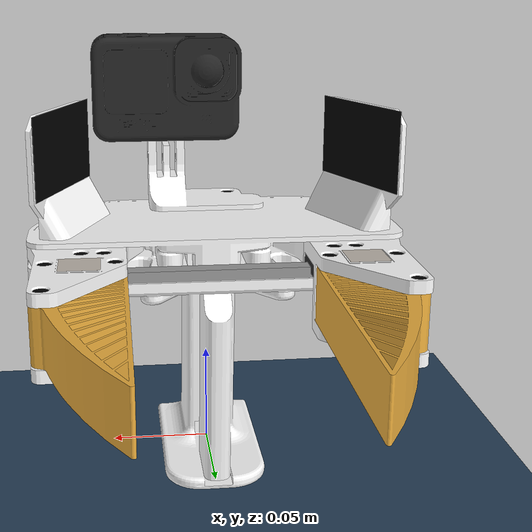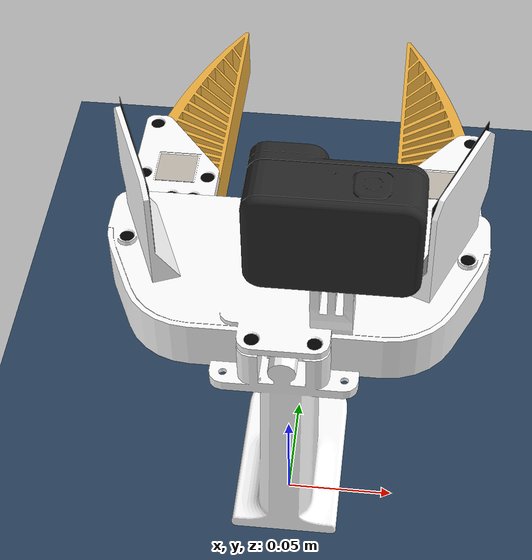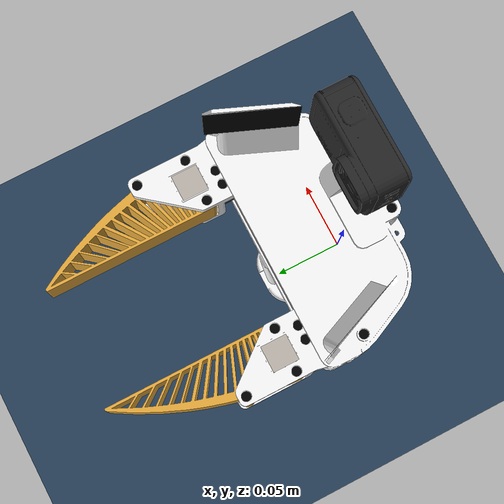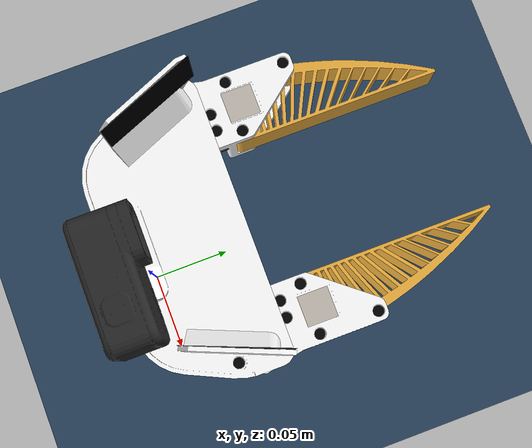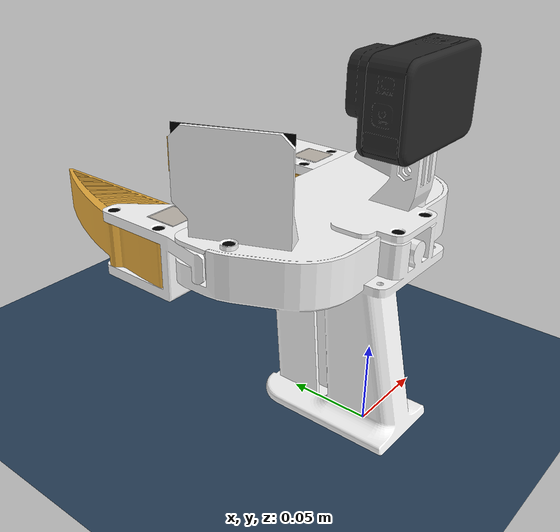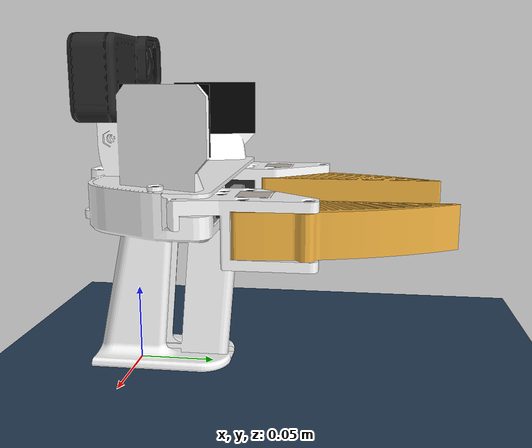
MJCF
<mujoco model="scene">

  <include file="umi_gripper.xml"/>

  <statistic extent="1.0"/>

  <visual>
    <headlight diffuse="0.3 0.3 0.3" ambient="0.2 0.2 0.2" specular="0 0 0"/>
    <rgba haze="0.15 0.25 0.35 1"/>
    <global azimuth="-120" elevation="-20"/>
    <quality shadowsize="0"/>
  </visual>

  <asset>
    <texture type="skybox" builtin="gradient" rgb1="0.3 0.5 0.7" rgb2="0 0 0" width="512" height="3072"/>
    <texture type="2d" name="groundplane" builtin="checker" mark="edge" rgb1="0.2 0.3 0.4" rgb2="0.1 0.2 0.3"
      markrgb="0.8 0.8 0.8" width="300" height="300"/>
    <material name="groundplane" texture="groundplane" texuniform="true" texrepeat="5 5" reflectance="0.0"/>
  </asset>

  <worldbody>
    <light pos="0 0 4.5" dir="0 0 -1" directional="true"/>
    <light pos="0 -4.5 0.6" dir="0 1 0" directional="true"/>

    <geom name="floor" size="1 1 0.05" type="plane" material="groundplane"/>
  </worldbody>
</mujoco>

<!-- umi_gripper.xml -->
<mujoco model="umi_gripper">
  <compiler angle="radian" meshdir="assets" texturedir="assets"/>

  <option integrator="implicitfast" impratio="10" cone="elliptic" noslip_iterations="2">
    <flag multiccd="enable"/>
  </option>

  <asset>
    <mesh file="base_link.stl"/>
    <mesh file="left_finger_holder.stl"/>
    <mesh file="left_finger.stl"/>
    <mesh file="right_finger_holder.stl"/>
    <mesh file="right_finger.stl"/>
    <mesh file="gopro.stl"/>

    <texture name="right_aruco_sticker" type="2d" file="right_aruco_sticker.png"/>
    <texture name="left_aruco_sticker" type="2d" file="left_aruco_sticker.png"/>
    <material name="Right_Aruco_Base_Sticker" texture="right_aruco_sticker"/>
    <material name="Left_Aruco_Base_Sticker" texture="left_aruco_sticker"/>

    <material name="mirror" rgba="0 0 0 1" texrepeat="5 5" reflectance="1.0"/>
    <material name="white" rgba="1 1 1 1"/>
    <material name="gray" rgba="0.15 0.15 0.15 1"/>
    <material name="light_gray" rgba="0.6 0.6 0.6 1"/>
    <material name="orange" rgba="0.92 0.68 0.24 1"/>
    <material name="black" rgba="0 0 0 1"/>
  </asset>

  <default>
    <default class="umi_gripper">
      <joint frictionloss="0.1" armature="0.1"/>
      <position kp="1000"/>

      <default class="screw">
        <geom type="cylinder" size="0.0035 0.0035 0.01" material="black" contype="0" conaffinity="0"/>
      </default>

      <default class="gripper_slide">
        <joint type="slide" damping="0.1" range="-1.2 1.2"/>
        <position kp="100" dampratio="1" ctrlrange="-1.2 1.2"/>
      </default>
      <default class="gripper_hinge">
        <joint type="hinge" damping="10.1" range="-31.415 31.415"/>
        <position kp="10" dampratio="0.1" ctrlrange="-3.1415 3.1415"/>
      </default>
      <default class="finger_slide">
        <joint type="slide" stiffness="100" damping="10.1" range="0 0.05"/>
      </default>

      <default class="finger_actuator">
        <position ctrlrange="0 0.05"/>
      </default>
      <default class="gripper_actuator">
        <position kp="100" dampratio="1" ctrlrange="-1.2 1.2"/>
      </default>
      <default class="gripper_rot_actuator">
        <position kp="10" dampratio="0.1" ctrlrange="-3.1415 3.1415"/>
      </default>

      <default class="visual">
        <geom type="mesh" contype="0" conaffinity="0" density="0" group="2"/>
      </default>
      <default class="collision">
        <geom type="mesh" group="3"/>
      </default>

      <default class="marker">
        <geom type="box" size="0.009 0.009 0.00001" material="white" contype="0" conaffinity="0" mass="0.0"/>
      </default>
      <default class="finger_holder_geom">
        <geom type="mesh" contype="0" conaffinity="0" group="1" density="0" material="white"/>
      </default>
    </default>
  </default>

  <worldbody>
    <body quat="-1 1 0 0" pos="0 0 0.11">

      <!-- Gripper Camera -->
      <camera name="gripper_gopro" pos="0 -0.092 0.04" quat="0 1 0 0" mode="fixed" fovy="155"/>

      <!-- Positional Joints -->
      <joint name="gripper_joint_x" axis="1 0 0" class="gripper_slide"/>
      <joint name="gripper_joint_y" axis="0 0 1" class="gripper_slide"/>
      <joint name="gripper_joint_z" axis="0 -1 0" class="gripper_slide"/>

      <!-- Rotational Joints -->
      <joint name="gripper_joint_rx" axis="1 0 0" class="gripper_hinge"/>
      <joint name="gripper_joint_ry" axis="0 0 1" class="gripper_hinge"/>
      <joint name="gripper_joint_rz" axis="0 -1 0" class="gripper_hinge"/>

      <!-- Linear Rail -->
      <geom name="linear_guide_rail" type="box" pos="0 -0.002 0.062" size="0.08 0.003 0.004" material="light_gray"
        class="visual"/>

      <!-- Mirrors -->
      <geom name="left_mirror" type="box" pos="-0.069 -0.057 0.04" size="0.03 0.0187 0.0001" quat="0.828 0 0.5605 0"
        material="mirror" class="visual"/>
      <geom name="right_mirror" type="box" pos="0.069 -0.057 0.04" size="0.03 0.0187 0.0001" quat="0.828 0 -0.5605 0"
        material="mirror" class="visual"/>

      <!-- Base Link -->
      <geom mesh="base_link" class="visual" material="white"/>
      <geom mesh="base_link" class="collision"/>
      <geom name="left_center_base_screw" pos="-0.076 -0.018 0.036" quat="-1 1 0 0" class="screw"/>
      <geom name="right_center_base_screw" pos="0.076 -0.018 0.036" quat="-1 1 0 0" class="screw"/>
      <geom name="left_back_base_screw" pos="-0.0137 -0.018 -0.018" quat="-1 1 0 0" class="screw"/>
      <geom name="right_back_base_screw" pos="0.0137 -0.018 -0.018" quat="-1 1 0 0" class="screw"/>

      <!-- GoPro Camera -->
      <geom pos="0.01965 -0.07875 -0.0187" quat="0 0 -1 1" mesh="gopro" class="visual" material="gray"/>
      <geom pos="0.01965 -0.07875 -0.0187" quat="0 0 -1 1" mesh="gopro" class="collision"/>

      <!-- Left Finger -->
      <body name="left_finger_holder" quat="1 1 0 0">
        <geom name="left_screw_back_outside" pos="-0.0515 0.07 0.012" class="screw"/>
        <geom name="left_screw_back_inside" pos="-0.0615 0.07 0.012" class="screw"/>
        <geom name="left_screw_middle_outside" pos="-0.0768 0.0835 0.012" class="screw"/>
        <geom name="left_screw_middle_inside" pos="-0.047 0.0835 0.012" class="screw"/>
        <geom name="left_screw_front" pos="-0.0764 0.119 0.012" class="screw"/>
        <geom name="left_rail_block" type="box" pos="-0.051 0.063 0.006" size="0.009 0.012 0.004" material="gray"
          class="visual"/>
        <geom name="left_marker" pos="-0.062 0.088 0.0164" material="Left_Aruco_Base_Sticker" class="marker"/>
        <inertial pos="-0.0613355 0.104073 -0.0013157" quat="0.49913 0.411547 -0.543302 0.53509" mass="0.080081"
          diaginertia="0.000104597 0.000102992 1.90532e-05"/>
        <joint name="left_finger_joint" axis="1 0 0" class="finger_slide"/>
        <geom mesh="left_finger_holder" class="visual" material="white"/>
        <geom mesh="left_finger_holder" class="collision"/>
        <geom pos="-0.041722 0.0779 -0.0159" quat="0 0 -1 1" mesh="left_finger" class="visual" material="orange"/>
        <geom pos="-0.041722 0.0779 -0.0159" quat="0 0 -1 1" mesh="left_finger" class="collision"/>
      </body>

      <!-- Right Finger -->
      <body name="right_finger_holder" quat="1 1 0 0">
        <geom name="right_screw_back_outside" pos="0.0515 0.07 0.012" class="screw"/>
        <geom name="right_screw_back_inside" pos="0.0615 0.07 0.012" class="screw"/>
        <geom name="right_screw_middle_outside" pos="0.0764 0.0835 0.012" class="screw"/>
        <geom name="right_screw_middle_inside" pos="0.047 0.0835 0.012" class="screw"/>
        <geom name="right_screw_front" pos="0.0764 0.119 0.012" class="screw"/>
        <geom name="right_rail_block" type="box" pos="0.051 0.063 0.006" size="0.009 0.012 0.004" material="gray"
          class="visual"/>
        <geom name="right_marker" pos="0.062 0.088 0.0164" material="Right_Aruco_Base_Sticker" class="marker"/>
        <inertial pos="0.0613353 0.104073 -0.00131574" quat="0.535092 0.543308 -0.41154 0.499127" mass="0.080081"
          diaginertia="0.000104597 0.000102992 1.90532e-05"/>
        <joint name="right_finger_joint" axis="-1 0 0" class="finger_slide"/>
        <geom mesh="right_finger_holder" class="visual" material="white"/>
        <geom mesh="right_finger_holder" class="collision"/>
        <geom pos="0.041722 0.0779 0.0099" quat="1 1 0 0" mesh="right_finger" class="visual" material="orange"/>
        <geom pos="0.041722 0.0779 0.0099" quat="1 1 0 0" mesh="right_finger" class="collision"/>
      </body>
    </body>
  </worldbody>

  <tendon>
    <fixed name="split">
      <joint joint="right_finger_joint" coef="0.5"/>
      <joint joint="left_finger_joint" coef="0.5"/>
    </fixed>
  </tendon>

  <actuator>
    <position name="fingers_actuator" tendon="split" class="finger_actuator"/>
    <position name="gripper_joint_x_act" joint="gripper_joint_x" class="gripper_actuator"/>
    <position name="gripper_joint_y_act" joint="gripper_joint_y" class="gripper_actuator"/>
    <position name="gripper_joint_z_act" joint="gripper_joint_z" class="gripper_actuator"/>
    <position name="gripper_joint_rx_act" joint="gripper_joint_rx" class="gripper_rot_actuator"/>
    <position name="gripper_joint_ry_act" joint="gripper_joint_ry" class="gripper_rot_actuator"/>
    <position name="gripper_joint_rz_act" joint="gripper_joint_rz" class="gripper_rot_actuator"/>
  </actuator>
</mujoco>
